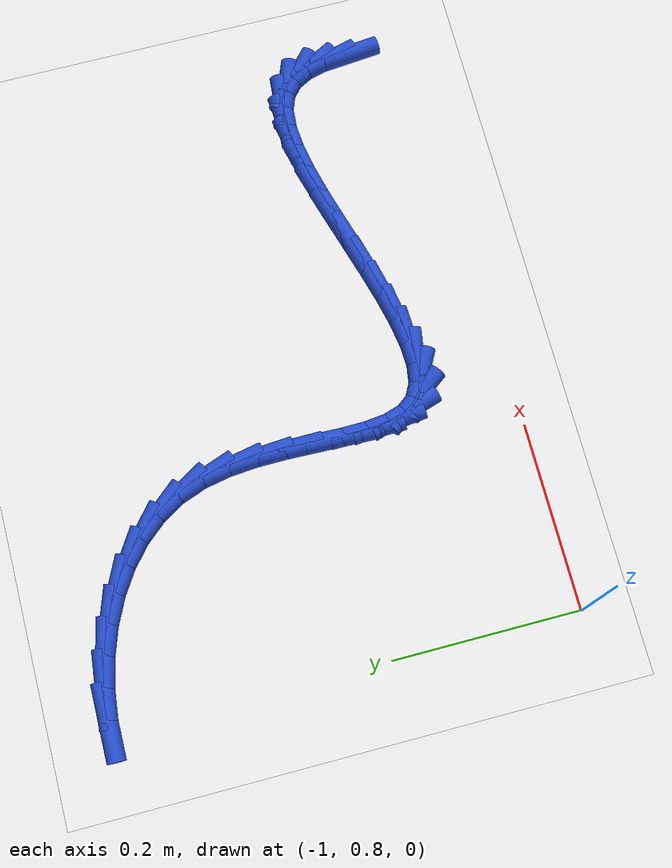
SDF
<sdf version="1.6">
 <world name="default">
  <model name="ground_plane">
   <static>1</static>
   <link name="link">
    <collision name="collision">
     <geometry><plane><normal>0 0 1</normal><size>100 100</size></plane></geometry>
     <surface><friction><ode><mu>100</mu><mu2>50</mu2></ode></friction></surface>
    </collision>
    <visual name="visual">
     <cast_shadows>0</cast_shadows>
     <geometry><plane><normal>0 0 1</normal><size>100 100</size></plane></geometry>
     <material>
      <script><uri>file://media/materials/scripts/gazebo.material</uri><name>Gazebo/WhiteGlow</name></script>
     </material>
    </visual>
   </link>
  </model>
  <model name="line">
   <link name="link_36">
    <pose>-0.34366364424330775 0.8764117288400705 0.01 0 1.57 -1.4751171955712417</pose>
    <collision name="collision">
     <geometry><cylinder><radius>0.01</radius><length>0.08</length></cylinder></geometry>
    </collision>
    <visual name="visual">
     <material>
      <script><name>Gazebo/Blue</name><uri>file://media/materials/scripts/gazebo.material</uri></script>
     </material>
     <geometry><cylinder><radius>0.01</radius><length>0.08</length></cylinder></geometry>
    </visual>
   </link>
   <link name="link_37">
    <pose>-0.34599636181266513 0.9007179166875775 0.01 0 1.57 -1.3212053123291074</pose>
    <collision name="collision">
     <geometry><cylinder><radius>0.01</radius><length>0.08</length></cylinder></geometry>
    </collision>
    <visual name="visual">
     <material>
      <script><name>Gazebo/Blue</name><uri>file://media/materials/scripts/gazebo.material</uri></script>
     </material>
     <geometry><cylinder><radius>0.01</radius><length>0.08</length></cylinder></geometry>
    </visual>
   </link>
   <link name="link_38">
    <pose>-0.3512861017812102 0.9214696189673763 0.01 0 1.57 -1.078250196329859</pose>
    <collision name="collision">
     <geometry><cylinder><radius>0.01</radius><length>0.08</length></cylinder></geometry>
    </collision>
    <visual name="visual">
     <material>
      <script><name>Gazebo/Blue</name><uri>file://media/materials/scripts/gazebo.material</uri></script>
     </material>
     <geometry><cylinder><radius>0.01</radius><length>0.08</length></cylinder></geometry>
    </visual>
   </link>
   <link name="link_39">
    <pose>-0.3601859086156409 0.9380532197640081 0.01 0 1.57 -0.7309339318425149</pose>
    <collision name="collision">
     <geometry><cylinder><radius>0.01</radius><length>0.08</length></cylinder></geometry>
    </collision>
    <visual name="visual">
     <material>
      <script><name>Gazebo/Blue</name><uri>file://media/materials/scripts/gazebo.material</uri></script>
     </material>
     <geometry><cylinder><radius>0.01</radius><length>0.08</length></cylinder></geometry>
    </visual>
   </link>
   <link name="link_40">
    <pose>-0.3733488267826549 0.9498551031620132 0.01 0 1.57 -0.35127036046358423</pose>
    <collision name="collision">
     <geometry><cylinder><radius>0.01</radius><length>0.08</length></cylinder></geometry>
    </collision>
    <visual name="visual">
     <material>
      <script><name>Gazebo/Blue</name><uri>file://media/materials/scripts/gazebo.material</uri></script>
     </material>
     <geometry><cylinder><radius>0.01</radius><length>0.08</length></cylinder></geometry>
    </visual>
   </link>
   <link name="link_41">
    <pose>-0.39126987315338213 0.9564226074155797 0.01 0 1.57 -0.08125241056327141</pose>
    <collision name="collision">
     <geometry><cylinder><radius>0.01</radius><length>0.08</length></cylinder></geometry>
    </collision>
    <visual name="visual">
     <material>
      <script><name>Gazebo/Blue</name><uri>file://media/materials/scripts/gazebo.material</uri></script>
     </material>
     <geometry><cylinder><radius>0.01</radius><length>0.08</length></cylinder></geometry>
    </visual>
   </link>
   <link name="link_42">
    <pose>-0.41352888729481413 0.958235196605014 0.01 0 1.57 0.08214575033104163</pose>
    <collision name="collision">
     <geometry><cylinder><radius>0.01</radius><length>0.08</length></cylinder></geometry>
    </collision>
    <visual name="visual">
     <material>
      <script><name>Gazebo/Blue</name><uri>file://media/materials/scripts/gazebo.material</uri></script>
     </material>
     <geometry><cylinder><radius>0.01</radius><length>0.08</length></cylinder></geometry>
    </visual>
   </link>
   <link name="link_43">
    <pose>-0.4393770384408317 0.9561070919165768 0.01 0 1.57 0.18114001203333813</pose>
    <collision name="collision">
     <geometry><cylinder><radius>0.01</radius><length>0.08</length></cylinder></geometry>
    </collision>
    <visual name="visual">
     <material>
      <script><name>Gazebo/Blue</name><uri>file://media/materials/scripts/gazebo.material</uri></script>
     </material>
     <geometry><cylinder><radius>0.01</radius><length>0.08</length></cylinder></geometry>
    </visual>
   </link>
   <link name="link_44">
    <pose>-0.46806506832106787 0.9508529499578967 0.01 0 1.57 0.24102582659216687</pose>
    <collision name="collision">
     <geometry><cylinder><radius>0.01</radius><length>0.08</length></cylinder></geometry>
    </collision>
    <visual name="visual">
     <material>
      <script><name>Gazebo/Blue</name><uri>file://media/materials/scripts/gazebo.material</uri></script>
     </material>
     <geometry><cylinder><radius>0.01</radius><length>0.08</length></cylinder></geometry>
    </visual>
   </link>
   <link name="link_45">
    <pose>-0.49884371866515403 0.9432874273366004 0.01 0 1.57 0.274989318874367</pose>
    <collision name="collision">
     <geometry><cylinder><radius>0.01</radius><length>0.08</length></cylinder></geometry>
    </collision>
    <visual name="visual">
     <material>
      <script><name>Gazebo/Blue</name><uri>file://media/materials/scripts/gazebo.material</uri></script>
     </material>
     <geometry><cylinder><radius>0.01</radius><length>0.08</length></cylinder></geometry>
    </visual>
   </link>
   <link name="link_46">
    <pose>-0.5309637312027223 0.9342251806603161 0.01 0 1.57 0.28951151797443164</pose>
    <collision name="collision">
     <geometry><cylinder><radius>0.01</radius><length>0.08</length></cylinder></geometry>
    </collision>
    <visual name="visual">
     <material>
      <script><name>Gazebo/Blue</name><uri>file://media/materials/scripts/gazebo.material</uri></script>
     </material>
     <geometry><cylinder><radius>0.01</radius><length>0.08</length></cylinder></geometry>
    </visual>
   </link>
   <link name="link_47">
    <pose>-0.5636758476634055 0.9244808665366708 0.01 0 1.57 0.28708971415917006</pose>
    <collision name="collision">
     <geometry><cylinder><radius>0.01</radius><length>0.08</length></cylinder></geometry>
    </collision>
    <visual name="visual">
     <material>
      <script><name>Gazebo/Blue</name><uri>file://media/materials/scripts/gazebo.material</uri></script>
     </material>
     <geometry><cylinder><radius>0.01</radius><length>0.08</length></cylinder></geometry>
    </visual>
   </link>
   <link name="link_48">
    <pose>-0.5962308097768352 0.9148691415732924 0.01 0 1.57 0.26722397066394293</pose>
    <collision name="collision">
     <geometry><cylinder><radius>0.01</radius><length>0.08</length></cylinder></geometry>
    </collision>
    <visual name="visual">
     <material>
      <script><name>Gazebo/Blue</name><uri>file://media/materials/scripts/gazebo.material</uri></script>
     </material>
     <geometry><cylinder><radius>0.01</radius><length>0.08</length></cylinder></geometry>
    </visual>
   </link>
   <link name="link_49">
    <pose>-0.6278793592726438 0.906204662377808 0.01 0 1.57 0.22620184832455223</pose>
    <collision name="collision">
     <geometry><cylinder><radius>0.01</radius><length>0.08</length></cylinder></geometry>
    </collision>
    <visual name="visual">
     <material>
      <script><name>Gazebo/Blue</name><uri>file://media/materials/scripts/gazebo.material</uri></script>
     </material>
     <geometry><cylinder><radius>0.01</radius><length>0.08</length></cylinder></geometry>
    </visual>
   </link>
   <link name="link_50">
    <pose>-0.657872237880463 0.8993020855578453 0.01 0 1.57 0.15554163273530774</pose>
    <collision name="collision">
     <geometry><cylinder><radius>0.01</radius><length>0.08</length></cylinder></geometry>
    </collision>
    <visual name="visual">
     <material>
      <script><name>Gazebo/Blue</name><uri>file://media/materials/scripts/gazebo.material</uri></script>
     </material>
     <geometry><cylinder><radius>0.01</radius><length>0.08</length></cylinder></geometry>
    </visual>
   </link>
   <link name="link_51">
    <pose>-0.6854601873299251 0.8949760677210318 0.01 0 1.57 0.03823997910304859</pose>
    <collision name="collision">
     <geometry><cylinder><radius>0.01</radius><length>0.08</length></cylinder></geometry>
    </collision>
    <visual name="visual">
     <material>
      <script><name>Gazebo/Blue</name><uri>file://media/materials/scripts/gazebo.material</uri></script>
     </material>
     <geometry><cylinder><radius>0.01</radius><length>0.08</length></cylinder></geometry>
    </visual>
   </link>
   <link name="link_52">
    <pose>-0.7098939493506625 0.8940412654749949 0.01 0 1.57 -0.15800071380295008</pose>
    <collision name="collision">
     <geometry><cylinder><radius>0.01</radius><length>0.08</length></cylinder></geometry>
    </collision>
    <visual name="visual">
     <material>
      <script><name>Gazebo/Blue</name><uri>file://media/materials/scripts/gazebo.material</uri></script>
     </material>
     <geometry><cylinder><radius>0.01</radius><length>0.08</length></cylinder></geometry>
    </visual>
   </link>
   <link name="link_53">
    <pose>-0.7304242656723073 0.897312335427362 0.01 0 1.57 -0.481264790733699</pose>
    <collision name="collision">
     <geometry><cylinder><radius>0.01</radius><length>0.08</length></cylinder></geometry>
    </collision>
    <visual name="visual">
     <material>
      <script><name>Gazebo/Blue</name><uri>file://media/materials/scripts/gazebo.material</uri></script>
     </material>
     <geometry><cylinder><radius>0.01</radius><length>0.08</length></cylinder></geometry>
    </visual>
   </link>
   <link name="link_54">
    <pose>-0.7463018780244912 0.9056039341857609 0.01 0 1.57 -0.9185276640830071</pose>
    <collision name="collision">
     <geometry><cylinder><radius>0.01</radius><length>0.08</length></cylinder></geometry>
    </collision>
    <visual name="visual">
     <material>
      <script><name>Gazebo/Blue</name><uri>file://media/materials/scripts/gazebo.material</uri></script>
     </material>
     <geometry><cylinder><radius>0.01</radius><length>0.08</length></cylinder></geometry>
    </visual>
   </link>
   <link name="link_55">
    <pose>-0.7569620947352252 0.9195609276097089 0.01 0 1.57 -1.2630967971118676</pose>
    <collision name="collision">
     <geometry><cylinder><radius>0.01</radius><length>0.08</length></cylinder></geometry>
    </collision>
    <visual name="visual">
     <material>
      <script><name>Gazebo/Blue</name><uri>file://media/materials/scripts/gazebo.material</uri></script>
     </material>
     <geometry><cylinder><radius>0.01</radius><length>0.08</length></cylinder></geometry>
    </visual>
   </link>
   <link name="link_56">
    <pose>-0.7630493837037606 0.9387158236890526 0.01 0 1.57 -1.4583936111009894</pose>
    <collision name="collision">
     <geometry><cylinder><radius>0.01</radius><length>0.08</length></cylinder></geometry>
    </collision>
    <visual name="visual">
     <material>
      <script><name>Gazebo/Blue</name><uri>file://media/materials/scripts/gazebo.material</uri></script>
     </material>
     <geometry><cylinder><radius>0.01</radius><length>0.08</length></cylinder></geometry>
    </visual>
   </link>
   <link name="link_57">
    <pose>-0.7656949750317199 0.9621533369384467 0.01 0 1.57 -1.5582443029590516</pose>
    <collision name="collision">
     <geometry><cylinder><radius>0.01</radius><length>0.08</length></cylinder></geometry>
    </collision>
    <visual name="visual">
     <material>
      <script><name>Gazebo/Blue</name><uri>file://media/materials/scripts/gazebo.material</uri></script>
     </material>
     <geometry><cylinder><radius>0.01</radius><length>0.08</length></cylinder></geometry>
    </visual>
   </link>
   <link name="link_58">
    <pose>-0.7660314323558962 0.9889569550962151 0.01 0 1.57 1.5420855572879484</pose>
    <collision name="collision">
     <geometry><cylinder><radius>0.01</radius><length>0.08</length></cylinder></geometry>
    </collision>
    <visual name="visual">
     <material>
      <script><name>Gazebo/Blue</name><uri>file://media/materials/scripts/gazebo.material</uri></script>
     </material>
     <geometry><cylinder><radius>0.01</radius><length>0.08</length></cylinder></geometry>
    </visual>
   </link>
   <link name="link_59">
    <pose>-0.7651913193130839 1.0182101659006806 0.01 0 1.57 1.5420862481166222</pose>
    <collision name="collision">
     <geometry><cylinder><radius>0.01</radius><length>0.08</length></cylinder></geometry>
    </collision>
    <visual name="visual">
     <material>
      <script><name>Gazebo/Blue</name><uri>file://media/materials/scripts/gazebo.material</uri></script>
     </material>
     <geometry><cylinder><radius>0.01</radius><length>0.08</length></cylinder></geometry>
    </visual>
   </link>
   <link name="link_60">
    <pose>-0.7643071995400774 1.048996457090168 0.01 0 1.57 -1.5642862748445243</pose>
    <collision name="collision">
     <geometry><cylinder><radius>0.01</radius><length>0.08</length></cylinder></geometry>
    </collision>
    <visual name="visual">
     <material>
      <script><name>Gazebo/Blue</name><uri>file://media/materials/scripts/gazebo.material</uri></script>
     </material>
     <geometry><cylinder><radius>0.01</radius><length>0.08</length></cylinder></geometry>
    </visual>
   </link>
   <link name="link_61">
    <pose>-0.7645116366736705 1.0803993164030006 0.01 0 1.57 -1.4929689462433988</pose>
    <collision name="collision">
     <geometry><cylinder><radius>0.01</radius><length>0.08</length></cylinder></geometry>
    </collision>
    <visual name="visual">
     <material>
      <script><name>Gazebo/Blue</name><uri>file://media/materials/scripts/gazebo.material</uri></script>
     </material>
     <geometry><cylinder><radius>0.01</radius><length>0.08</length></cylinder></geometry>
    </visual>
   </link>
   <link name="link_62">
    <pose>-0.7669371943506571 1.1115022315775016 0.01 0 1.57 -1.3797806796780474</pose>
    <collision name="collision">
     <geometry><cylinder><radius>0.01</radius><length>0.08</length></cylinder></geometry>
    </collision>
    <visual name="visual">
     <material>
      <script><name>Gazebo/Blue</name><uri>file://media/materials/scripts/gazebo.material</uri></script>
     </material>
     <geometry><cylinder><radius>0.01</radius><length>0.08</length></cylinder></geometry>
    </visual>
   </link>
   <link name="link_63">
    <pose>-0.7727164362078316 1.141388690351995 0.01 0 1.57 -1.2176725990502888</pose>
    <collision name="collision">
     <geometry><cylinder><radius>0.01</radius><length>0.08</length></cylinder></geometry>
    </collision>
    <visual name="visual">
     <material>
      <script><name>Gazebo/Blue</name><uri>file://media/materials/scripts/gazebo.material</uri></script>
     </material>
     <geometry><cylinder><radius>0.01</radius><length>0.08</length></cylinder></geometry>
    </visual>
   </link>
   <link name="link_64">
    <pose>-0.7829509936327925 1.169156788784172 0.01 0 1.57 -1.032894420834657</pose>
    <collision name="collision">
     <geometry><cylinder><radius>0.01</radius><length>0.08</length></cylinder></geometry>
    </collision>
    <visual name="visual">
     <material>
      <script><name>Gazebo/Blue</name><uri>file://media/materials/scripts/gazebo.material</uri></script>
     </material>
     <geometry><cylinder><radius>0.01</radius><length>0.08</length></cylinder></geometry>
    </visual>
   </link>
   <link name="link_65">
    <pose>-0.7979409267393834 1.1942831795988647 0.01 0 1.57 -0.861651325916574</pose>
    <collision name="collision">
     <geometry><cylinder><radius>0.01</radius><length>0.08</length></cylinder></geometry>
    </collision>
    <visual name="visual">
     <material>
      <script><name>Gazebo/Blue</name><uri>file://media/materials/scripts/gazebo.material</uri></script>
     </material>
     <geometry><cylinder><radius>0.01</radius><length>0.08</length></cylinder></geometry>
    </visual>
   </link>
   <link name="link_66">
    <pose>-0.8171312048167478 1.2166483477730086 0.01 0 1.57 -0.7077767998189369</pose>
    <collision name="collision">
     <geometry><cylinder><radius>0.01</radius><length>0.08</length></cylinder></geometry>
    </collision>
    <visual name="visual">
     <material>
      <script><name>Gazebo/Blue</name><uri>file://media/materials/scripts/gazebo.material</uri></script>
     </material>
     <geometry><cylinder><radius>0.01</radius><length>0.08</length></cylinder></geometry>
    </visual>
   </link>
   <link name="link_67">
    <pose>-0.8399251469751283 1.2361524483408717 0.01 0 1.57 -0.5701539982143686</pose>
    <collision name="collision">
     <geometry><cylinder><radius>0.01</radius><length>0.08</length></cylinder></geometry>
    </collision>
    <visual name="visual">
     <material>
      <script><name>Gazebo/Blue</name><uri>file://media/materials/scripts/gazebo.material</uri></script>
     </material>
     <geometry><cylinder><radius>0.01</radius><length>0.08</length></cylinder></geometry>
    </visual>
   </link>
   <link name="link_68">
    <pose>-0.8657260723247691 1.252695636336722 0.01 0 1.57 -0.44582003260957576</pose>
    <collision name="collision">
     <geometry><cylinder><radius>0.01</radius><length>0.08</length></cylinder></geometry>
    </collision>
    <visual name="visual">
     <material>
      <script><name>Gazebo/Blue</name><uri>file://media/materials/scripts/gazebo.material</uri></script>
     </material>
     <geometry><cylinder><radius>0.01</radius><length>0.08</length></cylinder></geometry>
    </visual>
   </link>
   <link name="link_69">
    <pose>-0.8939372999759121 1.2661780667948268 0.01 0 1.57 -0.3311194910486212</pose>
    <collision name="collision">
     <geometry><cylinder><radius>0.01</radius><length>0.08</length></cylinder></geometry>
    </collision>
    <visual name="visual">
     <material>
      <script><name>Gazebo/Blue</name><uri>file://media/materials/scripts/gazebo.material</uri></script>
     </material>
     <geometry><cylinder><radius>0.01</radius><length>0.08</length></cylinder></geometry>
    </visual>
   </link>
   <link name="link_70">
    <pose>-0.923962149038801 1.276499894749454 0.01 0 1.57 -0.22228846714532277</pose>
    <collision name="collision">
     <geometry><cylinder><radius>0.01</radius><length>0.08</length></cylinder></geometry>
    </collision>
    <visual name="visual">
     <material>
      <script><name>Gazebo/Blue</name><uri>file://media/materials/scripts/gazebo.material</uri></script>
     </material>
     <geometry><cylinder><radius>0.01</radius><length>0.08</length></cylinder></geometry>
    </visual>
   </link>
   <link name="link_71">
    <pose>-0.955203938623679 1.283561275234871 0.01 0 1.57 -0.11564149985590917</pose>
    <collision name="collision">
     <geometry><cylinder><radius>0.01</radius><length>0.08</length></cylinder></geometry>
    </collision>
    <visual name="visual">
     <material>
      <script><name>Gazebo/Blue</name><uri>file://media/materials/scripts/gazebo.material</uri></script>
     </material>
     <geometry><cylinder><radius>0.01</radius><length>0.08</length></cylinder></geometry>
    </visual>
   </link>
   <link name="link_72">
    <pose>-0.9870659878407896 1.2872623632853468 0.01 0 1.57 -0.007556572630497869</pose>
    <collision name="collision">
     <geometry><cylinder><radius>0.01</radius><length>0.08</length></cylinder></geometry>
    </collision>
    <visual name="visual">
     <material>
      <script><name>Gazebo/Blue</name><uri>file://media/materials/scripts/gazebo.material</uri></script>
     </material>
     <geometry><cylinder><radius>0.01</radius><length>0.08</length></cylinder></geometry>
    </visual>
   </link>
  </model>
 </world>
</sdf>
